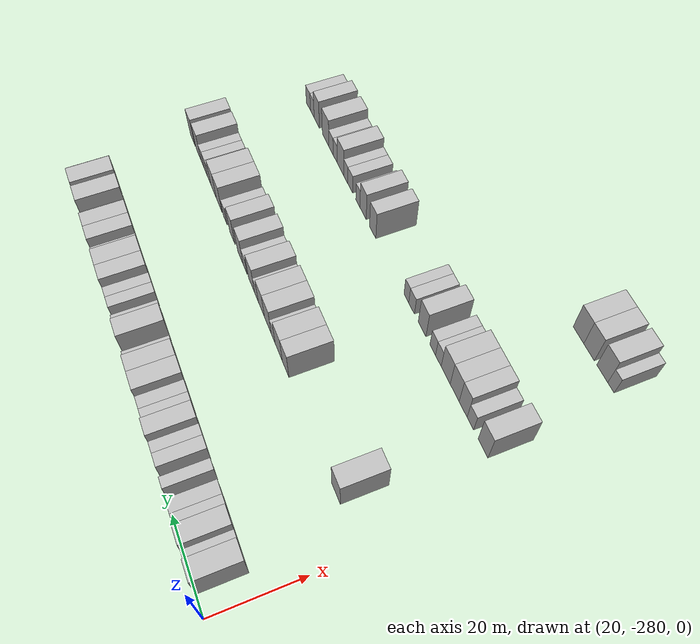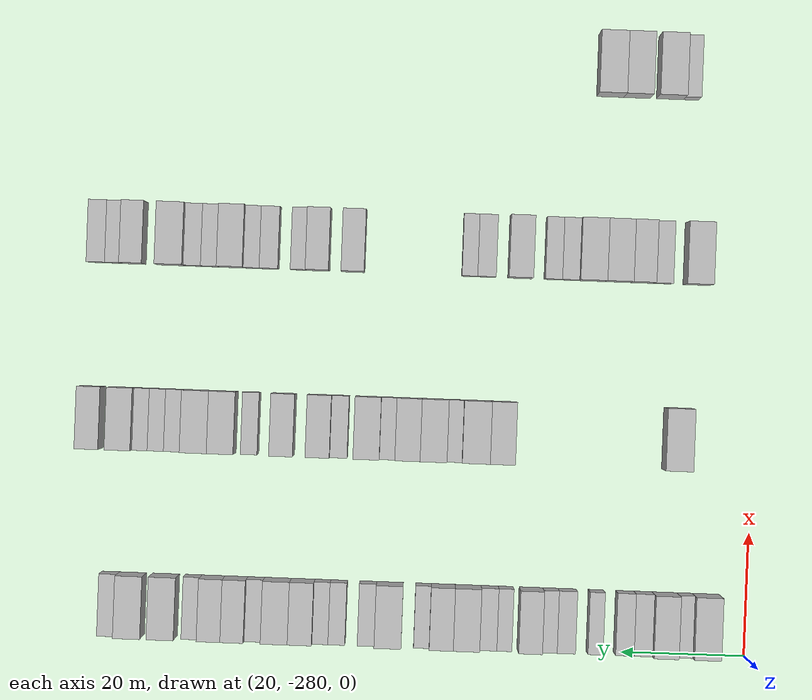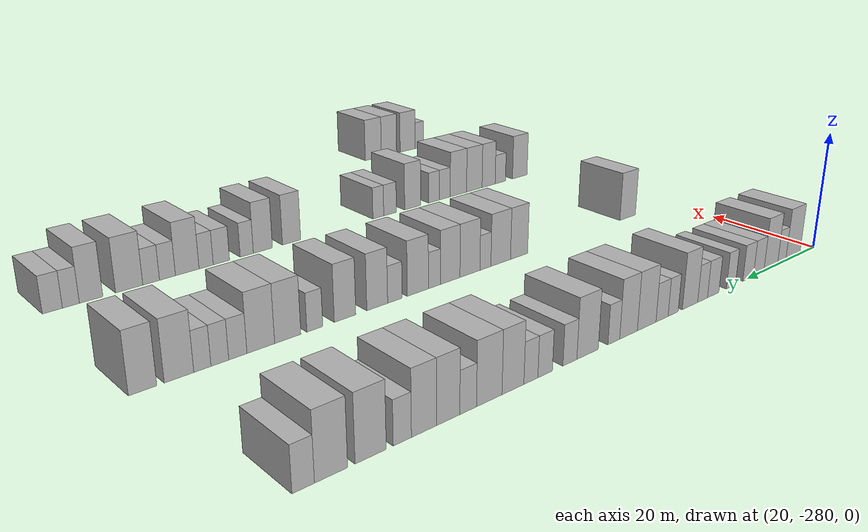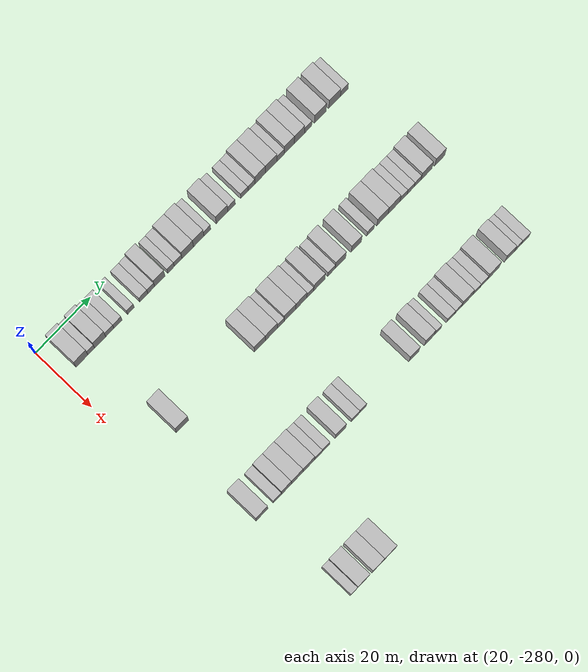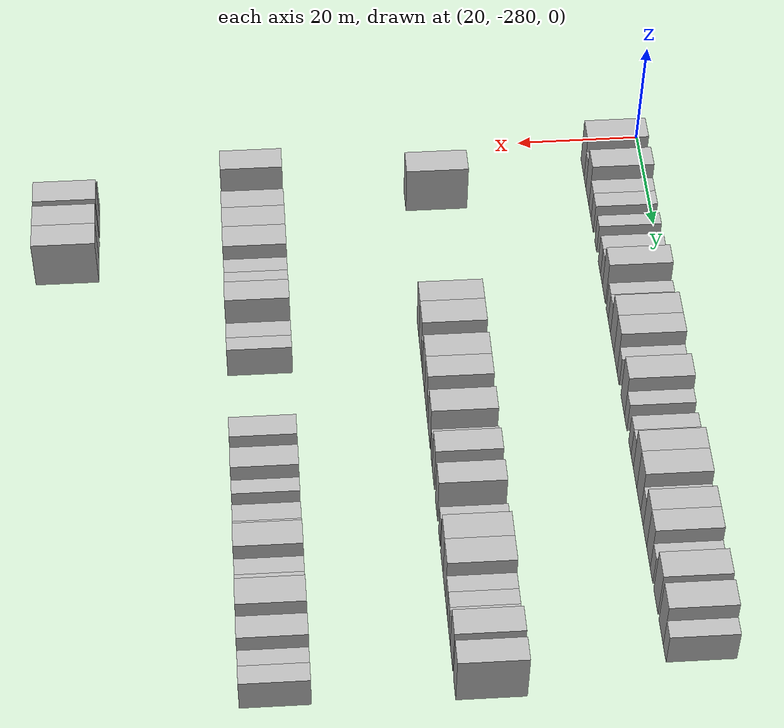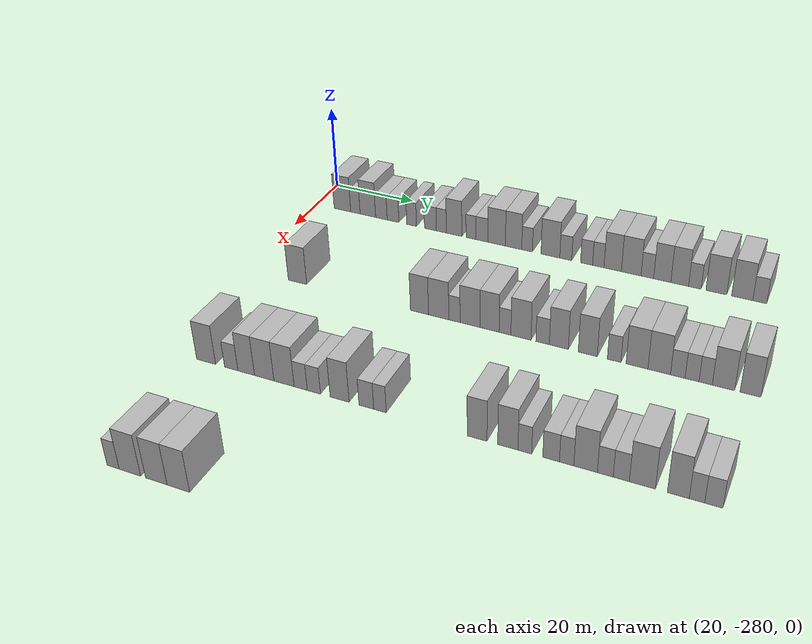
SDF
<sdf version="1.6">
 <world name="default">
  <model name="building_50">
   <static>1</static>
   <pose>25.0000 -273.2904 0 0.000000 0.000000 0.000000</pose>
   <link name="link">
    <pose>0 0 4.50 0 0 0</pose>
    <collision name="collision"><geometry><box><size>10.0000 4.3311 9.0000</size></box></geometry></collision>
    <visual name="visual">
     <cast_shadows>0</cast_shadows>
     <geometry><box><size>10.0000 4.3311 9.0000</size></box></geometry>
     <material>
      <script>
       <uri>model://HANNAS_wall/materials/scripts</uri>
       <uri>model://HANNAS_wall/materials/textures</uri>
       <name>vrc/HANNAS_wall</name>
      </script>
     </material>
    </visual>
   </link>
  </model>
  <model name="building_51">
   <static>1</static>
   <pose>25.0000 -269.8968 0 0.000000 0.000000 0.000000</pose>
   <link name="link">
    <pose>0 0 3.00 0 0 0</pose>
    <collision name="collision"><geometry><box><size>10.0000 2.4562 6.0000</size></box></geometry></collision>
    <visual name="visual">
     <cast_shadows>0</cast_shadows>
     <geometry><box><size>10.0000 2.4562 6.0000</size></box></geometry>
     <material>
      <script>
       <uri>model://HANNAS_wall/materials/scripts</uri>
       <uri>model://HANNAS_wall/materials/textures</uri>
       <name>vrc/HANNAS_wall</name>
      </script>
     </material>
    </visual>
   </link>
  </model>
  <model name="building_52">
   <static>1</static>
   <pose>25.0000 -266.6651 0 0.000000 0.000000 0.000000</pose>
   <link name="link">
    <pose>0 0 4.50 0 0 0</pose>
    <collision name="collision"><geometry><box><size>10.0000 4.0073 9.0000</size></box></geometry></collision>
    <visual name="visual">
     <cast_shadows>0</cast_shadows>
     <geometry><box><size>10.0000 4.0073 9.0000</size></box></geometry>
     <material>
      <script>
       <uri>model://HANNAS_wall/materials/scripts</uri>
       <uri>model://HANNAS_wall/materials/textures</uri>
       <name>vrc/HANNAS_wall</name>
      </script>
     </material>
    </visual>
   </link>
  </model>
  <model name="building_53">
   <static>1</static>
   <pose>25.0000 -263.1774 0 0.000000 0.000000 0.000000</pose>
   <link name="link">
    <pose>0 0 3.00 0 0 0</pose>
    <collision name="collision"><geometry><box><size>10.0000 2.9680 6.0000</size></box></geometry></collision>
    <visual name="visual">
     <cast_shadows>0</cast_shadows>
     <geometry><box><size>10.0000 2.9680 6.0000</size></box></geometry>
     <material>
      <script>
       <uri>model://HANNAS_wall/materials/scripts</uri>
       <uri>model://HANNAS_wall/materials/textures</uri>
       <name>vrc/HANNAS_wall</name>
      </script>
     </material>
    </visual>
   </link>
  </model>
  <model name="building_54">
   <static>1</static>
   <pose>25.0000 -260.2049 0 0.000000 0.000000 0.000000</pose>
   <link name="link">
    <pose>0 0 3.00 0 0 0</pose>
    <collision name="collision"><geometry><box><size>10.0000 2.9771 6.0000</size></box></geometry></collision>
    <visual name="visual">
     <cast_shadows>0</cast_shadows>
     <geometry><box><size>10.0000 2.9771 6.0000</size></box></geometry>
     <material>
      <script>
       <uri>model://HANNAS_wall/materials/scripts</uri>
       <uri>model://HANNAS_wall/materials/textures</uri>
       <name>vrc/HANNAS_wall</name>
      </script>
     </material>
    </visual>
   </link>
  </model>
  <model name="building_55">
   <static>1</static>
   <pose>25.0000 -255.4980 0 0.000000 0.000000 0.000000</pose>
   <link name="link">
    <pose>0 0 3.00 0 0 0</pose>
    <collision name="collision"><geometry><box><size>10.0000 2.4366 6.0000</size></box></geometry></collision>
    <visual name="visual">
     <cast_shadows>0</cast_shadows>
     <geometry><box><size>10.0000 2.4366 6.0000</size></box></geometry>
     <material>
      <script>
       <uri>model://HANNAS_wall/materials/scripts</uri>
       <uri>model://HANNAS_wall/materials/textures</uri>
       <name>vrc/HANNAS_wall</name>
      </script>
     </material>
    </visual>
   </link>
  </model>
  <model name="building_56">
   <static>1</static>
   <pose>25.0000 -250.8059 0 0.000000 0.000000 0.000000</pose>
   <link name="link">
    <pose>0 0 3.00 0 0 0</pose>
    <collision name="collision"><geometry><box><size>10.0000 2.9476 6.0000</size></box></geometry></collision>
    <visual name="visual">
     <cast_shadows>0</cast_shadows>
     <geometry><box><size>10.0000 2.9476 6.0000</size></box></geometry>
     <material>
      <script>
       <uri>model://HANNAS_wall/materials/scripts</uri>
       <uri>model://HANNAS_wall/materials/textures</uri>
       <name>vrc/HANNAS_wall</name>
      </script>
     </material>
    </visual>
   </link>
  </model>
  <model name="building_57">
   <static>1</static>
   <pose>25.0000 -248.0919 0 0.000000 0.000000 0.000000</pose>
   <link name="link">
    <pose>0 0 3.00 0 0 0</pose>
    <collision name="collision"><geometry><box><size>10.0000 2.4805 6.0000</size></box></geometry></collision>
    <visual name="visual">
     <cast_shadows>0</cast_shadows>
     <geometry><box><size>10.0000 2.4805 6.0000</size></box></geometry>
     <material>
      <script>
       <uri>model://HANNAS_wall/materials/scripts</uri>
       <uri>model://HANNAS_wall/materials/textures</uri>
       <name>vrc/HANNAS_wall</name>
      </script>
     </material>
    </visual>
   </link>
  </model>
  <model name="building_58">
   <static>1</static>
   <pose>25.0000 -244.9559 0 0.000000 0.000000 0.000000</pose>
   <link name="link">
    <pose>0 0 4.50 0 0 0</pose>
    <collision name="collision"><geometry><box><size>10.0000 3.7914 9.0000</size></box></geometry></collision>
    <visual name="visual">
     <cast_shadows>0</cast_shadows>
     <geometry><box><size>10.0000 3.7914 9.0000</size></box></geometry>
     <material>
      <script>
       <uri>model://HANNAS_wall/materials/scripts</uri>
       <uri>model://HANNAS_wall/materials/textures</uri>
       <name>vrc/HANNAS_wall</name>
      </script>
     </material>
    </visual>
   </link>
  </model>
  <model name="building_59">
   <static>1</static>
   <pose>25.0000 -240.8540 0 0.000000 0.000000 0.000000</pose>
   <link name="link">
    <pose>0 0 3.00 0 0 0</pose>
    <collision name="collision"><geometry><box><size>10.0000 2.4125 6.0000</size></box></geometry></collision>
    <visual name="visual">
     <cast_shadows>0</cast_shadows>
     <geometry><box><size>10.0000 2.4125 6.0000</size></box></geometry>
     <material>
      <script>
       <uri>model://HANNAS_wall/materials/scripts</uri>
       <uri>model://HANNAS_wall/materials/textures</uri>
       <name>vrc/HANNAS_wall</name>
      </script>
     </material>
    </visual>
   </link>
  </model>
  <model name="building_60">
   <static>1</static>
   <pose>25.0000 -238.2404 0 0.000000 0.000000 0.000000</pose>
   <link name="link">
    <pose>0 0 3.00 0 0 0</pose>
    <collision name="collision"><geometry><box><size>10.0000 2.8147 6.0000</size></box></geometry></collision>
    <visual name="visual">
     <cast_shadows>0</cast_shadows>
     <geometry><box><size>10.0000 2.8147 6.0000</size></box></geometry>
     <material>
      <script>
       <uri>model://HANNAS_wall/materials/scripts</uri>
       <uri>model://HANNAS_wall/materials/textures</uri>
       <name>vrc/HANNAS_wall</name>
      </script>
     </material>
    </visual>
   </link>
  </model>
  <model name="building_61">
   <static>1</static>
   <pose>25.0000 -234.7269 0 0.000000 0.000000 0.000000</pose>
   <link name="link">
    <pose>0 0 4.50 0 0 0</pose>
    <collision name="collision"><geometry><box><size>10.0000 4.2123 9.0000</size></box></geometry></collision>
    <visual name="visual">
     <cast_shadows>0</cast_shadows>
     <geometry><box><size>10.0000 4.2123 9.0000</size></box></geometry>
     <material>
      <script>
       <uri>model://HANNAS_wall/materials/scripts</uri>
       <uri>model://HANNAS_wall/materials/textures</uri>
       <name>vrc/HANNAS_wall</name>
      </script>
     </material>
    </visual>
   </link>
  </model>
  <model name="building_62">
   <static>1</static>
   <pose>25.0000 -230.6934 0 0.000000 0.000000 0.000000</pose>
   <link name="link">
    <pose>0 0 4.50 0 0 0</pose>
    <collision name="collision"><geometry><box><size>10.0000 3.8547 9.0000</size></box></geometry></collision>
    <visual name="visual">
     <cast_shadows>0</cast_shadows>
     <geometry><box><size>10.0000 3.8547 9.0000</size></box></geometry>
     <material>
      <script>
       <uri>model://HANNAS_wall/materials/scripts</uri>
       <uri>model://HANNAS_wall/materials/textures</uri>
       <name>vrc/HANNAS_wall</name>
      </script>
     </material>
    </visual>
   </link>
  </model>
  <model name="building_63">
   <static>1</static>
   <pose>25.0000 -227.5191 0 0.000000 0.000000 0.000000</pose>
   <link name="link">
    <pose>0 0 3.00 0 0 0</pose>
    <collision name="collision"><geometry><box><size>10.0000 2.4938 6.0000</size></box></geometry></collision>
    <visual name="visual">
     <cast_shadows>0</cast_shadows>
     <geometry><box><size>10.0000 2.4938 6.0000</size></box></geometry>
     <material>
      <script>
       <uri>model://HANNAS_wall/materials/scripts</uri>
       <uri>model://HANNAS_wall/materials/textures</uri>
       <name>vrc/HANNAS_wall</name>
      </script>
     </material>
    </visual>
   </link>
  </model>
  <model name="building_64">
   <static>1</static>
   <pose>25.0000 -222.1138 0 0.000000 0.000000 0.000000</pose>
   <link name="link">
    <pose>0 0 4.50 0 0 0</pose>
    <collision name="collision"><geometry><box><size>10.0000 4.3168 9.0000</size></box></geometry></collision>
    <visual name="visual">
     <cast_shadows>0</cast_shadows>
     <geometry><box><size>10.0000 4.3168 9.0000</size></box></geometry>
     <material>
      <script>
       <uri>model://HANNAS_wall/materials/scripts</uri>
       <uri>model://HANNAS_wall/materials/textures</uri>
       <name>vrc/HANNAS_wall</name>
      </script>
     </material>
    </visual>
   </link>
  </model>
  <model name="building_65">
   <static>1</static>
   <pose>25.0000 -218.5914 0 0.000000 0.000000 0.000000</pose>
   <link name="link">
    <pose>0 0 3.00 0 0 0</pose>
    <collision name="collision"><geometry><box><size>10.0000 2.7280 6.0000</size></box></geometry></collision>
    <visual name="visual">
     <cast_shadows>0</cast_shadows>
     <geometry><box><size>10.0000 2.7280 6.0000</size></box></geometry>
     <material>
      <script>
       <uri>model://HANNAS_wall/materials/scripts</uri>
       <uri>model://HANNAS_wall/materials/textures</uri>
       <name>vrc/HANNAS_wall</name>
      </script>
     </material>
    </visual>
   </link>
  </model>
  <model name="building_66">
   <static>1</static>
   <pose>25.0000 -213.8740 0 0.000000 0.000000 0.000000</pose>
   <link name="link">
    <pose>0 0 3.00 0 0 0</pose>
    <collision name="collision"><geometry><box><size>10.0000 2.7068 6.0000</size></box></geometry></collision>
    <visual name="visual">
     <cast_shadows>0</cast_shadows>
     <geometry><box><size>10.0000 2.7068 6.0000</size></box></geometry>
     <material>
      <script>
       <uri>model://HANNAS_wall/materials/scripts</uri>
       <uri>model://HANNAS_wall/materials/textures</uri>
       <name>vrc/HANNAS_wall</name>
      </script>
     </material>
    </visual>
   </link>
  </model>
  <model name="building_67">
   <static>1</static>
   <pose>25.0000 -211.2467 0 0.000000 0.000000 0.000000</pose>
   <link name="link">
    <pose>0 0 3.00 0 0 0</pose>
    <collision name="collision"><geometry><box><size>10.0000 2.5478 6.0000</size></box></geometry></collision>
    <visual name="visual">
     <cast_shadows>0</cast_shadows>
     <geometry><box><size>10.0000 2.5478 6.0000</size></box></geometry>
     <material>
      <script>
       <uri>model://HANNAS_wall/materials/scripts</uri>
       <uri>model://HANNAS_wall/materials/textures</uri>
       <name>vrc/HANNAS_wall</name>
      </script>
     </material>
    </visual>
   </link>
  </model>
  <model name="building_68">
   <static>1</static>
   <pose>25.0000 -208.0414 0 0.000000 0.000000 0.000000</pose>
   <link name="link">
    <pose>0 0 4.50 0 0 0</pose>
    <collision name="collision"><geometry><box><size>10.0000 3.8626 9.0000</size></box></geometry></collision>
    <visual name="visual">
     <cast_shadows>0</cast_shadows>
     <geometry><box><size>10.0000 3.8626 9.0000</size></box></geometry>
     <material>
      <script>
       <uri>model://HANNAS_wall/materials/scripts</uri>
       <uri>model://HANNAS_wall/materials/textures</uri>
       <name>vrc/HANNAS_wall</name>
      </script>
     </material>
    </visual>
   </link>
  </model>
  <model name="building_69">
   <static>1</static>
   <pose>25.0000 -203.9562 0 0.000000 0.000000 0.000000</pose>
   <link name="link">
    <pose>0 0 4.50 0 0 0</pose>
    <collision name="collision"><geometry><box><size>10.0000 4.3080 9.0000</size></box></geometry></collision>
    <visual name="visual">
     <cast_shadows>0</cast_shadows>
     <geometry><box><size>10.0000 4.3080 9.0000</size></box></geometry>
     <material>
      <script>
       <uri>model://HANNAS_wall/materials/scripts</uri>
       <uri>model://HANNAS_wall/materials/textures</uri>
       <name>vrc/HANNAS_wall</name>
      </script>
     </material>
    </visual>
   </link>
  </model>
  <model name="building_70">
   <static>1</static>
   <pose>25.0000 -200.4395 0 0.000000 0.000000 0.000000</pose>
   <link name="link">
    <pose>0 0 3.00 0 0 0</pose>
    <collision name="collision"><geometry><box><size>10.0000 2.7252 6.0000</size></box></geometry></collision>
    <visual name="visual">
     <cast_shadows>0</cast_shadows>
     <geometry><box><size>10.0000 2.7252 6.0000</size></box></geometry>
     <material>
      <script>
       <uri>model://HANNAS_wall/materials/scripts</uri>
       <uri>model://HANNAS_wall/materials/textures</uri>
       <name>vrc/HANNAS_wall</name>
      </script>
     </material>
    </visual>
   </link>
  </model>
  <model name="building_71">
   <static>1</static>
   <pose>25.0000 -197.2259 0 0.000000 0.000000 0.000000</pose>
   <link name="link">
    <pose>0 0 4.50 0 0 0</pose>
    <collision name="collision"><geometry><box><size>10.0000 3.7020 9.0000</size></box></geometry></collision>
    <visual name="visual">
     <cast_shadows>0</cast_shadows>
     <geometry><box><size>10.0000 3.7020 9.0000</size></box></geometry>
     <material>
      <script>
       <uri>model://HANNAS_wall/materials/scripts</uri>
       <uri>model://HANNAS_wall/materials/textures</uri>
       <name>vrc/HANNAS_wall</name>
      </script>
     </material>
    </visual>
   </link>
  </model>
  <model name="building_72">
   <static>1</static>
   <pose>25.0000 -193.4871 0 0.000000 0.000000 0.000000</pose>
   <link name="link">
    <pose>0 0 4.50 0 0 0</pose>
    <collision name="collision"><geometry><box><size>10.0000 3.7757 9.0000</size></box></geometry></collision>
    <visual name="visual">
     <cast_shadows>0</cast_shadows>
     <geometry><box><size>10.0000 3.7757 9.0000</size></box></geometry>
     <material>
      <script>
       <uri>model://HANNAS_wall/materials/scripts</uri>
       <uri>model://HANNAS_wall/materials/textures</uri>
       <name>vrc/HANNAS_wall</name>
      </script>
     </material>
    </visual>
   </link>
  </model>
  <model name="building_73">
   <static>1</static>
   <pose>25.0000 -190.2673 0 0.000000 0.000000 0.000000</pose>
   <link name="link">
    <pose>0 0 3.00 0 0 0</pose>
    <collision name="collision"><geometry><box><size>10.0000 2.6640 6.0000</size></box></geometry></collision>
    <visual name="visual">
     <cast_shadows>0</cast_shadows>
     <geometry><box><size>10.0000 2.6640 6.0000</size></box></geometry>
     <material>
      <script>
       <uri>model://HANNAS_wall/materials/scripts</uri>
       <uri>model://HANNAS_wall/materials/textures</uri>
       <name>vrc/HANNAS_wall</name>
      </script>
     </material>
    </visual>
   </link>
  </model>
  <model name="building_74">
   <static>1</static>
   <pose>25.0000 -185.7619 0 0.000000 0.000000 0.000000</pose>
   <link name="link">
    <pose>0 0 4.50 0 0 0</pose>
    <collision name="collision"><geometry><box><size>10.0000 4.3467 9.0000</size></box></geometry></collision>
    <visual name="visual">
     <cast_shadows>0</cast_shadows>
     <geometry><box><size>10.0000 4.3467 9.0000</size></box></geometry>
     <material>
      <script>
       <uri>model://HANNAS_wall/materials/scripts</uri>
       <uri>model://HANNAS_wall/materials/textures</uri>
       <name>vrc/HANNAS_wall</name>
      </script>
     </material>
    </visual>
   </link>
  </model>
  <model name="building_75">
   <static>1</static>
   <pose>25.0000 -180.4142 0 0.000000 0.000000 0.000000</pose>
   <link name="link">
    <pose>0 0 4.50 0 0 0</pose>
    <collision name="collision"><geometry><box><size>10.0000 4.3488 9.0000</size></box></geometry></collision>
    <visual name="visual">
     <cast_shadows>0</cast_shadows>
     <geometry><box><size>10.0000 4.3488 9.0000</size></box></geometry>
     <material>
      <script>
       <uri>model://HANNAS_wall/materials/scripts</uri>
       <uri>model://HANNAS_wall/materials/textures</uri>
       <name>vrc/HANNAS_wall</name>
      </script>
     </material>
    </visual>
   </link>
  </model>
  <model name="building_76">
   <static>1</static>
   <pose>25.0000 -176.8170 0 0.000000 0.000000 0.000000</pose>
   <link name="link">
    <pose>0 0 3.00 0 0 0</pose>
    <collision name="collision"><geometry><box><size>10.0000 2.8456 6.0000</size></box></geometry></collision>
    <visual name="visual">
     <cast_shadows>0</cast_shadows>
     <geometry><box><size>10.0000 2.8456 6.0000</size></box></geometry>
     <material>
      <script>
       <uri>model://HANNAS_wall/materials/scripts</uri>
       <uri>model://HANNAS_wall/materials/textures</uri>
       <name>vrc/HANNAS_wall</name>
      </script>
     </material>
    </visual>
   </link>
  </model>
  <model name="building_276">
   <static>1</static>
   <pose>55.0000 -267.6507 0 0.000000 0.000000 0.000000</pose>
   <link name="link">
    <pose>0 0 4.50 0 0 0</pose>
    <collision name="collision"><geometry><box><size>10.0000 4.4295 9.0000</size></box></geometry></collision>
    <visual name="visual">
     <cast_shadows>0</cast_shadows>
     <geometry><box><size>10.0000 4.4295 9.0000</size></box></geometry>
     <material>
      <script>
       <uri>model://HANNAS_wall/materials/scripts</uri>
       <uri>model://HANNAS_wall/materials/textures</uri>
       <name>vrc/HANNAS_wall</name>
      </script>
     </material>
    </visual>
   </link>
  </model>
  <model name="building_277">
   <static>1</static>
   <pose>55.0000 -239.4118 0 0.000000 0.000000 0.000000</pose>
   <link name="link">
    <pose>0 0 4.50 0 0 0</pose>
    <collision name="collision"><geometry><box><size>10.0000 4.0161 9.0000</size></box></geometry></collision>
    <visual name="visual">
     <cast_shadows>0</cast_shadows>
     <geometry><box><size>10.0000 4.0161 9.0000</size></box></geometry>
     <material>
      <script>
       <uri>model://HANNAS_wall/materials/scripts</uri>
       <uri>model://HANNAS_wall/materials/textures</uri>
       <name>vrc/HANNAS_wall</name>
      </script>
     </material>
    </visual>
   </link>
  </model>
  <model name="building_278">
   <static>1</static>
   <pose>55.0000 -235.1738 0 0.000000 0.000000 0.000000</pose>
   <link name="link">
    <pose>0 0 4.50 0 0 0</pose>
    <collision name="collision"><geometry><box><size>10.0000 4.4600 9.0000</size></box></geometry></collision>
    <visual name="visual">
     <cast_shadows>0</cast_shadows>
     <geometry><box><size>10.0000 4.4600 9.0000</size></box></geometry>
     <material>
      <script>
       <uri>model://HANNAS_wall/materials/scripts</uri>
       <uri>model://HANNAS_wall/materials/textures</uri>
       <name>vrc/HANNAS_wall</name>
      </script>
     </material>
    </visual>
   </link>
  </model>
  <model name="building_279">
   <static>1</static>
   <pose>55.0000 -231.7213 0 0.000000 0.000000 0.000000</pose>
   <link name="link">
    <pose>0 0 3.00 0 0 0</pose>
    <collision name="collision"><geometry><box><size>10.0000 2.4451 6.0000</size></box></geometry></collision>
    <visual name="visual">
     <cast_shadows>0</cast_shadows>
     <geometry><box><size>10.0000 2.4451 6.0000</size></box></geometry>
     <material>
      <script>
       <uri>model://HANNAS_wall/materials/scripts</uri>
       <uri>model://HANNAS_wall/materials/textures</uri>
       <name>vrc/HANNAS_wall</name>
      </script>
     </material>
    </visual>
   </link>
  </model>
  <model name="building_280">
   <static>1</static>
   <pose>55.0000 -228.3449 0 0.000000 0.000000 0.000000</pose>
   <link name="link">
    <pose>0 0 4.50 0 0 0</pose>
    <collision name="collision"><geometry><box><size>10.0000 4.3076 9.0000</size></box></geometry></collision>
    <visual name="visual">
     <cast_shadows>0</cast_shadows>
     <geometry><box><size>10.0000 4.3076 9.0000</size></box></geometry>
     <material>
      <script>
       <uri>model://HANNAS_wall/materials/scripts</uri>
       <uri>model://HANNAS_wall/materials/textures</uri>
       <name>vrc/HANNAS_wall</name>
      </script>
     </material>
    </visual>
   </link>
  </model>
  <model name="building_281">
   <static>1</static>
   <pose>55.0000 -224.1755 0 0.000000 0.000000 0.000000</pose>
   <link name="link">
    <pose>0 0 4.50 0 0 0</pose>
    <collision name="collision"><geometry><box><size>10.0000 4.0311 9.0000</size></box></geometry></collision>
    <visual name="visual">
     <cast_shadows>0</cast_shadows>
     <geometry><box><size>10.0000 4.0311 9.0000</size></box></geometry>
     <material>
      <script>
       <uri>model://HANNAS_wall/materials/scripts</uri>
       <uri>model://HANNAS_wall/materials/textures</uri>
       <name>vrc/HANNAS_wall</name>
      </script>
     </material>
    </visual>
   </link>
  </model>
  <model name="building_282">
   <static>1</static>
   <pose>55.0000 -220.9117 0 0.000000 0.000000 0.000000</pose>
   <link name="link">
    <pose>0 0 3.00 0 0 0</pose>
    <collision name="collision"><geometry><box><size>10.0000 2.4965 6.0000</size></box></geometry></collision>
    <visual name="visual">
     <cast_shadows>0</cast_shadows>
     <geometry><box><size>10.0000 2.4965 6.0000</size></box></geometry>
     <material>
      <script>
       <uri>model://HANNAS_wall/materials/scripts</uri>
       <uri>model://HANNAS_wall/materials/textures</uri>
       <name>vrc/HANNAS_wall</name>
      </script>
     </material>
    </visual>
   </link>
  </model>
  <model name="building_283">
   <static>1</static>
   <pose>55.0000 -217.5650 0 0.000000 0.000000 0.000000</pose>
   <link name="link">
    <pose>0 0 4.50 0 0 0</pose>
    <collision name="collision"><geometry><box><size>10.0000 4.1969 9.0000</size></box></geometry></collision>
    <visual name="visual">
     <cast_shadows>0</cast_shadows>
     <geometry><box><size>10.0000 4.1969 9.0000</size></box></geometry>
     <material>
      <script>
       <uri>model://HANNAS_wall/materials/scripts</uri>
       <uri>model://HANNAS_wall/materials/textures</uri>
       <name>vrc/HANNAS_wall</name>
      </script>
     </material>
    </visual>
   </link>
  </model>
  <model name="building_284">
   <static>1</static>
   <pose>55.0000 -213.0805 0 0.000000 0.000000 0.000000</pose>
   <link name="link">
    <pose>0 0 3.00 0 0 0</pose>
    <collision name="collision"><geometry><box><size>10.0000 2.7721 6.0000</size></box></geometry></collision>
    <visual name="visual">
     <cast_shadows>0</cast_shadows>
     <geometry><box><size>10.0000 2.7721 6.0000</size></box></geometry>
     <material>
      <script>
       <uri>model://HANNAS_wall/materials/scripts</uri>
       <uri>model://HANNAS_wall/materials/textures</uri>
       <name>vrc/HANNAS_wall</name>
      </script>
     </material>
    </visual>
   </link>
  </model>
  <model name="building_285">
   <static>1</static>
   <pose>55.0000 -209.7598 0 0.000000 0.000000 0.000000</pose>
   <link name="link">
    <pose>0 0 4.50 0 0 0</pose>
    <collision name="collision"><geometry><box><size>10.0000 3.8693 9.0000</size></box></geometry></collision>
    <visual name="visual">
     <cast_shadows>0</cast_shadows>
     <geometry><box><size>10.0000 3.8693 9.0000</size></box></geometry>
     <material>
      <script>
       <uri>model://HANNAS_wall/materials/scripts</uri>
       <uri>model://HANNAS_wall/materials/textures</uri>
       <name>vrc/HANNAS_wall</name>
      </script>
     </material>
    </visual>
   </link>
  </model>
  <model name="building_286">
   <static>1</static>
   <pose>55.0000 -203.9226 0 0.000000 0.000000 0.000000</pose>
   <link name="link">
    <pose>0 0 4.50 0 0 0</pose>
    <collision name="collision"><geometry><box><size>10.0000 3.8051 9.0000</size></box></geometry></collision>
    <visual name="visual">
     <cast_shadows>0</cast_shadows>
     <geometry><box><size>10.0000 3.8051 9.0000</size></box></geometry>
     <material>
      <script>
       <uri>model://HANNAS_wall/materials/scripts</uri>
       <uri>model://HANNAS_wall/materials/textures</uri>
       <name>vrc/HANNAS_wall</name>
      </script>
     </material>
    </visual>
   </link>
  </model>
  <model name="building_287">
   <static>1</static>
   <pose>55.0000 -198.6810 0 0.000000 0.000000 0.000000</pose>
   <link name="link">
    <pose>0 0 3.00 0 0 0</pose>
    <collision name="collision"><geometry><box><size>10.0000 2.6782 6.0000</size></box></geometry></collision>
    <visual name="visual">
     <cast_shadows>0</cast_shadows>
     <geometry><box><size>10.0000 2.6782 6.0000</size></box></geometry>
     <material>
      <script>
       <uri>model://HANNAS_wall/materials/scripts</uri>
       <uri>model://HANNAS_wall/materials/textures</uri>
       <name>vrc/HANNAS_wall</name>
      </script>
     </material>
    </visual>
   </link>
  </model>
  <model name="building_288">
   <static>1</static>
   <pose>55.0000 -194.2145 0 0.000000 0.000000 0.000000</pose>
   <link name="link">
    <pose>0 0 4.50 0 0 0</pose>
    <collision name="collision"><geometry><box><size>10.0000 4.2547 9.0000</size></box></geometry></collision>
    <visual name="visual">
     <cast_shadows>0</cast_shadows>
     <geometry><box><size>10.0000 4.2547 9.0000</size></box></geometry>
     <material>
      <script>
       <uri>model://HANNAS_wall/materials/scripts</uri>
       <uri>model://HANNAS_wall/materials/textures</uri>
       <name>vrc/HANNAS_wall</name>
      </script>
     </material>
    </visual>
   </link>
  </model>
  <model name="building_289">
   <static>1</static>
   <pose>55.0000 -189.9244 0 0.000000 0.000000 0.000000</pose>
   <link name="link">
    <pose>0 0 4.50 0 0 0</pose>
    <collision name="collision"><geometry><box><size>10.0000 4.3255 9.0000</size></box></geometry></collision>
    <visual name="visual">
     <cast_shadows>0</cast_shadows>
     <geometry><box><size>10.0000 4.3255 9.0000</size></box></geometry>
     <material>
      <script>
       <uri>model://HANNAS_wall/materials/scripts</uri>
       <uri>model://HANNAS_wall/materials/textures</uri>
       <name>vrc/HANNAS_wall</name>
      </script>
     </material>
    </visual>
   </link>
  </model>
  <model name="building_290">
   <static>1</static>
   <pose>55.0000 -186.3811 0 0.000000 0.000000 0.000000</pose>
   <link name="link">
    <pose>0 0 3.00 0 0 0</pose>
    <collision name="collision"><geometry><box><size>10.0000 2.7610 6.0000</size></box></geometry></collision>
    <visual name="visual">
     <cast_shadows>0</cast_shadows>
     <geometry><box><size>10.0000 2.7610 6.0000</size></box></geometry>
     <material>
      <script>
       <uri>model://HANNAS_wall/materials/scripts</uri>
       <uri>model://HANNAS_wall/materials/textures</uri>
       <name>vrc/HANNAS_wall</name>
      </script>
     </material>
    </visual>
   </link>
  </model>
  <model name="building_291">
   <static>1</static>
   <pose>55.0000 -183.6917 0 0.000000 0.000000 0.000000</pose>
   <link name="link">
    <pose>0 0 3.00 0 0 0</pose>
    <collision name="collision"><geometry><box><size>10.0000 2.6178 6.0000</size></box></geometry></collision>
    <visual name="visual">
     <cast_shadows>0</cast_shadows>
     <geometry><box><size>10.0000 2.6178 6.0000</size></box></geometry>
     <material>
      <script>
       <uri>model://HANNAS_wall/materials/scripts</uri>
       <uri>model://HANNAS_wall/materials/textures</uri>
       <name>vrc/HANNAS_wall</name>
      </script>
     </material>
    </visual>
   </link>
  </model>
  <model name="building_292">
   <static>1</static>
   <pose>55.0000 -181.1468 0 0.000000 0.000000 0.000000</pose>
   <link name="link">
    <pose>0 0 3.00 0 0 0</pose>
    <collision name="collision"><geometry><box><size>10.0000 2.4719 6.0000</size></box></geometry></collision>
    <visual name="visual">
     <cast_shadows>0</cast_shadows>
     <geometry><box><size>10.0000 2.4719 6.0000</size></box></geometry>
     <material>
      <script>
       <uri>model://HANNAS_wall/materials/scripts</uri>
       <uri>model://HANNAS_wall/materials/textures</uri>
       <name>vrc/HANNAS_wall</name>
      </script>
     </material>
    </visual>
   </link>
  </model>
  <model name="building_293">
   <static>1</static>
   <pose>55.0000 -177.8460 0 0.000000 0.000000 0.000000</pose>
   <link name="link">
    <pose>0 0 4.50 0 0 0</pose>
    <collision name="collision"><geometry><box><size>10.0000 4.1296 9.0000</size></box></geometry></collision>
    <visual name="visual">
     <cast_shadows>0</cast_shadows>
     <geometry><box><size>10.0000 4.1296 9.0000</size></box></geometry>
     <material>
      <script>
       <uri>model://HANNAS_wall/materials/scripts</uri>
       <uri>model://HANNAS_wall/materials/textures</uri>
       <name>vrc/HANNAS_wall</name>
      </script>
     </material>
    </visual>
   </link>
  </model>
  <model name="building_294">
   <static>1</static>
   <pose>55.0000 -172.8827 0 0.000000 0.000000 0.000000</pose>
   <link name="link">
    <pose>0 0 4.50 0 0 0</pose>
    <collision name="collision"><geometry><box><size>10.0000 3.7970 9.0000</size></box></geometry></collision>
    <visual name="visual">
     <cast_shadows>0</cast_shadows>
     <geometry><box><size>10.0000 3.7970 9.0000</size></box></geometry>
     <material>
      <script>
       <uri>model://HANNAS_wall/materials/scripts</uri>
       <uri>model://HANNAS_wall/materials/textures</uri>
       <name>vrc/HANNAS_wall</name>
      </script>
     </material>
    </visual>
   </link>
  </model>
  <model name="building_505">
   <static>1</static>
   <pose>85.0000 -269.9126 0 0.000000 0.000000 0.000000</pose>
   <link name="link">
    <pose>0 0 4.50 0 0 0</pose>
    <collision name="collision"><geometry><box><size>10.0000 4.2509 9.0000</size></box></geometry></collision>
    <visual name="visual">
     <cast_shadows>0</cast_shadows>
     <geometry><box><size>10.0000 4.2509 9.0000</size></box></geometry>
     <material>
      <script>
       <uri>model://HANNAS_wall/materials/scripts</uri>
       <uri>model://HANNAS_wall/materials/textures</uri>
       <name>vrc/HANNAS_wall</name>
      </script>
     </material>
    </visual>
   </link>
  </model>
  <model name="building_506">
   <static>1</static>
   <pose>85.0000 -264.3212 0 0.000000 0.000000 0.000000</pose>
   <link name="link">
    <pose>0 0 3.00 0 0 0</pose>
    <collision name="collision"><geometry><box><size>10.0000 2.9319 6.0000</size></box></geometry></collision>
    <visual name="visual">
     <cast_shadows>0</cast_shadows>
     <geometry><box><size>10.0000 2.9319 6.0000</size></box></geometry>
     <material>
      <script>
       <uri>model://HANNAS_wall/materials/scripts</uri>
       <uri>model://HANNAS_wall/materials/textures</uri>
       <name>vrc/HANNAS_wall</name>
      </script>
     </material>
    </visual>
   </link>
  </model>
  <model name="building_507">
   <static>1</static>
   <pose>85.0000 -261.0388 0 0.000000 0.000000 0.000000</pose>
   <link name="link">
    <pose>0 0 4.50 0 0 0</pose>
    <collision name="collision"><geometry><box><size>10.0000 3.6329 9.0000</size></box></geometry></collision>
    <visual name="visual">
     <cast_shadows>0</cast_shadows>
     <geometry><box><size>10.0000 3.6329 9.0000</size></box></geometry>
     <material>
      <script>
       <uri>model://HANNAS_wall/materials/scripts</uri>
       <uri>model://HANNAS_wall/materials/textures</uri>
       <name>vrc/HANNAS_wall</name>
      </script>
     </material>
    </visual>
   </link>
  </model>
  <model name="building_508">
   <static>1</static>
   <pose>85.0000 -257.1276 0 0.000000 0.000000 0.000000</pose>
   <link name="link">
    <pose>0 0 4.50 0 0 0</pose>
    <collision name="collision"><geometry><box><size>10.0000 4.1895 9.0000</size></box></geometry></collision>
    <visual name="visual">
     <cast_shadows>0</cast_shadows>
     <geometry><box><size>10.0000 4.1895 9.0000</size></box></geometry>
     <material>
      <script>
       <uri>model://HANNAS_wall/materials/scripts</uri>
       <uri>model://HANNAS_wall/materials/textures</uri>
       <name>vrc/HANNAS_wall</name>
      </script>
     </material>
    </visual>
   </link>
  </model>
  <model name="building_509">
   <static>1</static>
   <pose>85.0000 -252.8796 0 0.000000 0.000000 0.000000</pose>
   <link name="link">
    <pose>0 0 4.50 0 0 0</pose>
    <collision name="collision"><geometry><box><size>10.0000 4.3064 9.0000</size></box></geometry></collision>
    <visual name="visual">
     <cast_shadows>0</cast_shadows>
     <geometry><box><size>10.0000 4.3064 9.0000</size></box></geometry>
     <material>
      <script>
       <uri>model://HANNAS_wall/materials/scripts</uri>
       <uri>model://HANNAS_wall/materials/textures</uri>
       <name>vrc/HANNAS_wall</name>
      </script>
     </material>
    </visual>
   </link>
  </model>
  <model name="building_510">
   <static>1</static>
   <pose>85.0000 -249.3430 0 0.000000 0.000000 0.000000</pose>
   <link name="link">
    <pose>0 0 3.00 0 0 0</pose>
    <collision name="collision"><geometry><box><size>10.0000 2.7669 6.0000</size></box></geometry></collision>
    <visual name="visual">
     <cast_shadows>0</cast_shadows>
     <geometry><box><size>10.0000 2.7669 6.0000</size></box></geometry>
     <material>
      <script>
       <uri>model://HANNAS_wall/materials/scripts</uri>
       <uri>model://HANNAS_wall/materials/textures</uri>
       <name>vrc/HANNAS_wall</name>
      </script>
     </material>
    </visual>
   </link>
  </model>
  <model name="building_511">
   <static>1</static>
   <pose>85.0000 -246.5872 0 0.000000 0.000000 0.000000</pose>
   <link name="link">
    <pose>0 0 3.00 0 0 0</pose>
    <collision name="collision"><geometry><box><size>10.0000 2.7446 6.0000</size></box></geometry></collision>
    <visual name="visual">
     <cast_shadows>0</cast_shadows>
     <geometry><box><size>10.0000 2.7446 6.0000</size></box></geometry>
     <material>
      <script>
       <uri>model://HANNAS_wall/materials/scripts</uri>
       <uri>model://HANNAS_wall/materials/textures</uri>
       <name>vrc/HANNAS_wall</name>
      </script>
     </material>
    </visual>
   </link>
  </model>
  <model name="building_512">
   <static>1</static>
   <pose>85.0000 -241.2654 0 0.000000 0.000000 0.000000</pose>
   <link name="link">
    <pose>0 0 4.50 0 0 0</pose>
    <collision name="collision"><geometry><box><size>10.0000 3.8992 9.0000</size></box></geometry></collision>
    <visual name="visual">
     <cast_shadows>0</cast_shadows>
     <geometry><box><size>10.0000 3.8992 9.0000</size></box></geometry>
     <material>
      <script>
       <uri>model://HANNAS_wall/materials/scripts</uri>
       <uri>model://HANNAS_wall/materials/textures</uri>
       <name>vrc/HANNAS_wall</name>
      </script>
     </material>
    </visual>
   </link>
  </model>
  <model name="building_513">
   <static>1</static>
   <pose>85.0000 -235.8287 0 0.000000 0.000000 0.000000</pose>
   <link name="link">
    <pose>0 0 3.00 0 0 0</pose>
    <collision name="collision"><geometry><box><size>10.0000 2.9741 6.0000</size></box></geometry></collision>
    <visual name="visual">
     <cast_shadows>0</cast_shadows>
     <geometry><box><size>10.0000 2.9741 6.0000</size></box></geometry>
     <material>
      <script>
       <uri>model://HANNAS_wall/materials/scripts</uri>
       <uri>model://HANNAS_wall/materials/textures</uri>
       <name>vrc/HANNAS_wall</name>
      </script>
     </material>
    </visual>
   </link>
  </model>
  <model name="building_514">
   <static>1</static>
   <pose>85.0000 -233.0889 0 0.000000 0.000000 0.000000</pose>
   <link name="link">
    <pose>0 0 3.00 0 0 0</pose>
    <collision name="collision"><geometry><box><size>10.0000 2.5056 6.0000</size></box></geometry></collision>
    <visual name="visual">
     <cast_shadows>0</cast_shadows>
     <geometry><box><size>10.0000 2.5056 6.0000</size></box></geometry>
     <material>
      <script>
       <uri>model://HANNAS_wall/materials/scripts</uri>
       <uri>model://HANNAS_wall/materials/textures</uri>
       <name>vrc/HANNAS_wall</name>
      </script>
     </material>
    </visual>
   </link>
  </model>
  <model name="building_515">
   <static>1</static>
   <pose>85.0000 -214.2918 0 0.000000 0.000000 0.000000</pose>
   <link name="link">
    <pose>0 0 4.50 0 0 0</pose>
    <collision name="collision"><geometry><box><size>10.0000 3.6961 9.0000</size></box></geometry></collision>
    <visual name="visual">
     <cast_shadows>0</cast_shadows>
     <geometry><box><size>10.0000 3.6961 9.0000</size></box></geometry>
     <material>
      <script>
       <uri>model://HANNAS_wall/materials/scripts</uri>
       <uri>model://HANNAS_wall/materials/textures</uri>
       <name>vrc/HANNAS_wall</name>
      </script>
     </material>
    </visual>
   </link>
  </model>
  <model name="building_516">
   <static>1</static>
   <pose>85.0000 -208.5851 0 0.000000 0.000000 0.000000</pose>
   <link name="link">
    <pose>0 0 4.50 0 0 0</pose>
    <collision name="collision"><geometry><box><size>10.0000 3.7174 9.0000</size></box></geometry></collision>
    <visual name="visual">
     <cast_shadows>0</cast_shadows>
     <geometry><box><size>10.0000 3.7174 9.0000</size></box></geometry>
     <material>
      <script>
       <uri>model://HANNAS_wall/materials/scripts</uri>
       <uri>model://HANNAS_wall/materials/textures</uri>
       <name>vrc/HANNAS_wall</name>
      </script>
     </material>
    </visual>
   </link>
  </model>
  <model name="building_517">
   <static>1</static>
   <pose>85.0000 -205.4751 0 0.000000 0.000000 0.000000</pose>
   <link name="link">
    <pose>0 0 3.00 0 0 0</pose>
    <collision name="collision"><geometry><box><size>10.0000 2.5026 6.0000</size></box></geometry></collision>
    <visual name="visual">
     <cast_shadows>0</cast_shadows>
     <geometry><box><size>10.0000 2.5026 6.0000</size></box></geometry>
     <material>
      <script>
       <uri>model://HANNAS_wall/materials/scripts</uri>
       <uri>model://HANNAS_wall/materials/textures</uri>
       <name>vrc/HANNAS_wall</name>
      </script>
     </material>
    </visual>
   </link>
  </model>
  <model name="building_518">
   <static>1</static>
   <pose>85.0000 -200.7291 0 0.000000 0.000000 0.000000</pose>
   <link name="link">
    <pose>0 0 3.00 0 0 0</pose>
    <collision name="collision"><geometry><box><size>10.0000 2.9894 6.0000</size></box></geometry></collision>
    <visual name="visual">
     <cast_shadows>0</cast_shadows>
     <geometry><box><size>10.0000 2.9894 6.0000</size></box></geometry>
     <material>
      <script>
       <uri>model://HANNAS_wall/materials/scripts</uri>
       <uri>model://HANNAS_wall/materials/textures</uri>
       <name>vrc/HANNAS_wall</name>
      </script>
     </material>
    </visual>
   </link>
  </model>
  <model name="building_519">
   <static>1</static>
   <pose>85.0000 -197.9580 0 0.000000 0.000000 0.000000</pose>
   <link name="link">
    <pose>0 0 3.00 0 0 0</pose>
    <collision name="collision"><geometry><box><size>10.0000 2.5529 6.0000</size></box></geometry></collision>
    <visual name="visual">
     <cast_shadows>0</cast_shadows>
     <geometry><box><size>10.0000 2.5529 6.0000</size></box></geometry>
     <material>
      <script>
       <uri>model://HANNAS_wall/materials/scripts</uri>
       <uri>model://HANNAS_wall/materials/textures</uri>
       <name>vrc/HANNAS_wall</name>
      </script>
     </material>
    </visual>
   </link>
  </model>
  <model name="building_520">
   <static>1</static>
   <pose>85.0000 -194.6144 0 0.000000 0.000000 0.000000</pose>
   <link name="link">
    <pose>0 0 4.50 0 0 0</pose>
    <collision name="collision"><geometry><box><size>10.0000 4.1343 9.0000</size></box></geometry></collision>
    <visual name="visual">
     <cast_shadows>0</cast_shadows>
     <geometry><box><size>10.0000 4.1343 9.0000</size></box></geometry>
     <material>
      <script>
       <uri>model://HANNAS_wall/materials/scripts</uri>
       <uri>model://HANNAS_wall/materials/textures</uri>
       <name>vrc/HANNAS_wall</name>
      </script>
     </material>
    </visual>
   </link>
  </model>
  <model name="building_521">
   <static>1</static>
   <pose>85.0000 -191.1812 0 0.000000 0.000000 0.000000</pose>
   <link name="link">
    <pose>0 0 3.00 0 0 0</pose>
    <collision name="collision"><geometry><box><size>10.0000 2.7321 6.0000</size></box></geometry></collision>
    <visual name="visual">
     <cast_shadows>0</cast_shadows>
     <geometry><box><size>10.0000 2.7321 6.0000</size></box></geometry>
     <material>
      <script>
       <uri>model://HANNAS_wall/materials/scripts</uri>
       <uri>model://HANNAS_wall/materials/textures</uri>
       <name>vrc/HANNAS_wall</name>
      </script>
     </material>
    </visual>
   </link>
  </model>
  <model name="building_522">
   <static>1</static>
   <pose>85.0000 -188.4252 0 0.000000 0.000000 0.000000</pose>
   <link name="link">
    <pose>0 0 3.00 0 0 0</pose>
    <collision name="collision"><geometry><box><size>10.0000 2.7799 6.0000</size></box></geometry></collision>
    <visual name="visual">
     <cast_shadows>0</cast_shadows>
     <geometry><box><size>10.0000 2.7799 6.0000</size></box></geometry>
     <material>
      <script>
       <uri>model://HANNAS_wall/materials/scripts</uri>
       <uri>model://HANNAS_wall/materials/textures</uri>
       <name>vrc/HANNAS_wall</name>
      </script>
     </material>
    </visual>
   </link>
  </model>
  <model name="building_523">
   <static>1</static>
   <pose>85.0000 -184.8234 0 0.000000 0.000000 0.000000</pose>
   <link name="link">
    <pose>0 0 4.50 0 0 0</pose>
    <collision name="collision"><geometry><box><size>10.0000 4.4237 9.0000</size></box></geometry></collision>
    <visual name="visual">
     <cast_shadows>0</cast_shadows>
     <geometry><box><size>10.0000 4.4237 9.0000</size></box></geometry>
     <material>
      <script>
       <uri>model://HANNAS_wall/materials/scripts</uri>
       <uri>model://HANNAS_wall/materials/textures</uri>
       <name>vrc/HANNAS_wall</name>
      </script>
     </material>
    </visual>
   </link>
  </model>
  <model name="building_524">
   <static>1</static>
   <pose>85.0000 -178.7969 0 0.000000 0.000000 0.000000</pose>
   <link name="link">
    <pose>0 0 4.50 0 0 0</pose>
    <collision name="collision"><geometry><box><size>10.0000 3.6293 9.0000</size></box></geometry></collision>
    <visual name="visual">
     <cast_shadows>0</cast_shadows>
     <geometry><box><size>10.0000 3.6293 9.0000</size></box></geometry>
     <material>
      <script>
       <uri>model://HANNAS_wall/materials/scripts</uri>
       <uri>model://HANNAS_wall/materials/textures</uri>
       <name>vrc/HANNAS_wall</name>
      </script>
     </material>
    </visual>
   </link>
  </model>
  <model name="building_525">
   <static>1</static>
   <pose>85.0000 -175.7054 0 0.000000 0.000000 0.000000</pose>
   <link name="link">
    <pose>0 0 3.00 0 0 0</pose>
    <collision name="collision"><geometry><box><size>10.0000 2.5536 6.0000</size></box></geometry></collision>
    <visual name="visual">
     <cast_shadows>0</cast_shadows>
     <geometry><box><size>10.0000 2.5536 6.0000</size></box></geometry>
     <material>
      <script>
       <uri>model://HANNAS_wall/materials/scripts</uri>
       <uri>model://HANNAS_wall/materials/textures</uri>
       <name>vrc/HANNAS_wall</name>
      </script>
     </material>
    </visual>
   </link>
  </model>
  <model name="building_526">
   <static>1</static>
   <pose>85.0000 -172.9438 0 0.000000 0.000000 0.000000</pose>
   <link name="link">
    <pose>0 0 3.00 0 0 0</pose>
    <collision name="collision"><geometry><box><size>10.0000 2.9697 6.0000</size></box></geometry></collision>
    <visual name="visual">
     <cast_shadows>0</cast_shadows>
     <geometry><box><size>10.0000 2.9697 6.0000</size></box></geometry>
     <material>
      <script>
       <uri>model://HANNAS_wall/materials/scripts</uri>
       <uri>model://HANNAS_wall/materials/textures</uri>
       <name>vrc/HANNAS_wall</name>
      </script>
     </material>
    </visual>
   </link>
  </model>
  <model name="building_722">
   <static>1</static>
   <pose>115.0000 -267.9519 0 0.000000 0.000000 0.000000</pose>
   <link name="link">
    <pose>0 0 3.00 0 0 0</pose>
    <collision name="collision"><geometry><box><size>10.0000 2.4820 6.0000</size></box></geometry></collision>
    <visual name="visual">
     <cast_shadows>0</cast_shadows>
     <geometry><box><size>10.0000 2.4820 6.0000</size></box></geometry>
     <material>
      <script>
       <uri>model://HANNAS_wall/materials/scripts</uri>
       <uri>model://HANNAS_wall/materials/textures</uri>
       <name>vrc/HANNAS_wall</name>
      </script>
     </material>
    </visual>
   </link>
  </model>
  <model name="building_723">
   <static>1</static>
   <pose>115.0000 -264.5334 0 0.000000 0.000000 0.000000</pose>
   <link name="link">
    <pose>0 0 4.50 0 0 0</pose>
    <collision name="collision"><geometry><box><size>10.0000 4.3550 9.0000</size></box></geometry></collision>
    <visual name="visual">
     <cast_shadows>0</cast_shadows>
     <geometry><box><size>10.0000 4.3550 9.0000</size></box></geometry>
     <material>
      <script>
       <uri>model://HANNAS_wall/materials/scripts</uri>
       <uri>model://HANNAS_wall/materials/textures</uri>
       <name>vrc/HANNAS_wall</name>
      </script>
     </material>
    </visual>
   </link>
  </model>
  <model name="building_724">
   <static>1</static>
   <pose>115.0000 -259.2128 0 0.000000 0.000000 0.000000</pose>
   <link name="link">
    <pose>0 0 4.50 0 0 0</pose>
    <collision name="collision"><geometry><box><size>10.0000 4.2862 9.0000</size></box></geometry></collision>
    <visual name="visual">
     <cast_shadows>0</cast_shadows>
     <geometry><box><size>10.0000 4.2862 9.0000</size></box></geometry>
     <material>
      <script>
       <uri>model://HANNAS_wall/materials/scripts</uri>
       <uri>model://HANNAS_wall/materials/textures</uri>
       <name>vrc/HANNAS_wall</name>
      </script>
     </material>
    </visual>
   </link>
  </model>
  <model name="building_725">
   <static>1</static>
   <pose>115.0000 -254.8540 0 0.000000 0.000000 0.000000</pose>
   <link name="link">
    <pose>0 0 4.50 0 0 0</pose>
    <collision name="collision"><geometry><box><size>10.0000 4.4314 9.0000</size></box></geometry></collision>
    <visual name="visual">
     <cast_shadows>0</cast_shadows>
     <geometry><box><size>10.0000 4.4314 9.0000</size></box></geometry>
     <material>
      <script>
       <uri>model://HANNAS_wall/materials/scripts</uri>
       <uri>model://HANNAS_wall/materials/textures</uri>
       <name>vrc/HANNAS_wall</name>
      </script>
     </material>
    </visual>
   </link>
  </model>
 </world>
</sdf>
